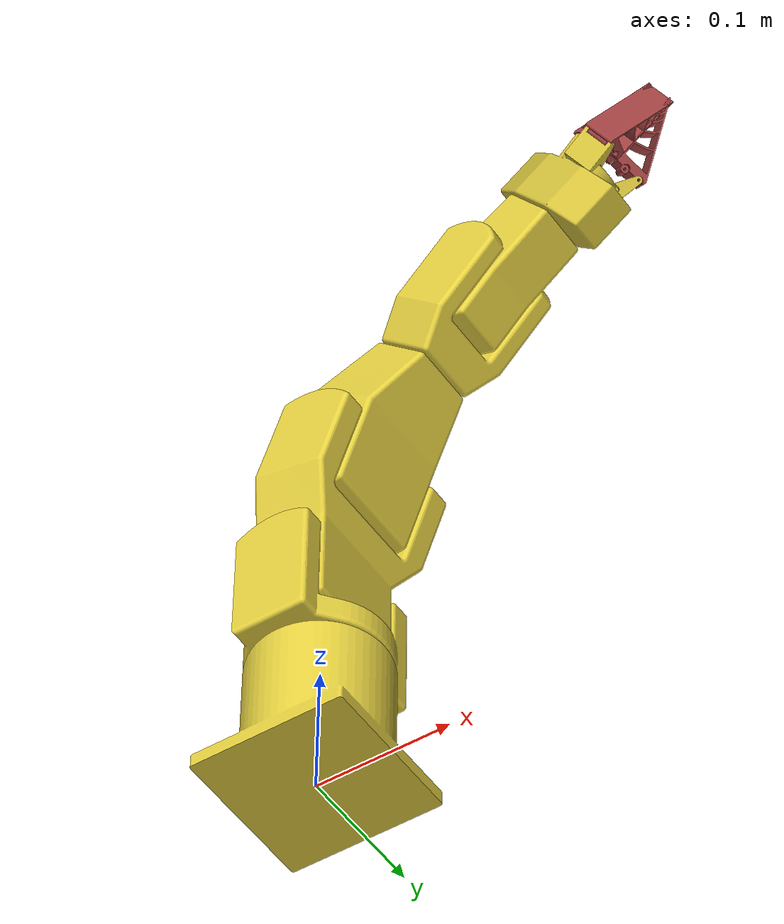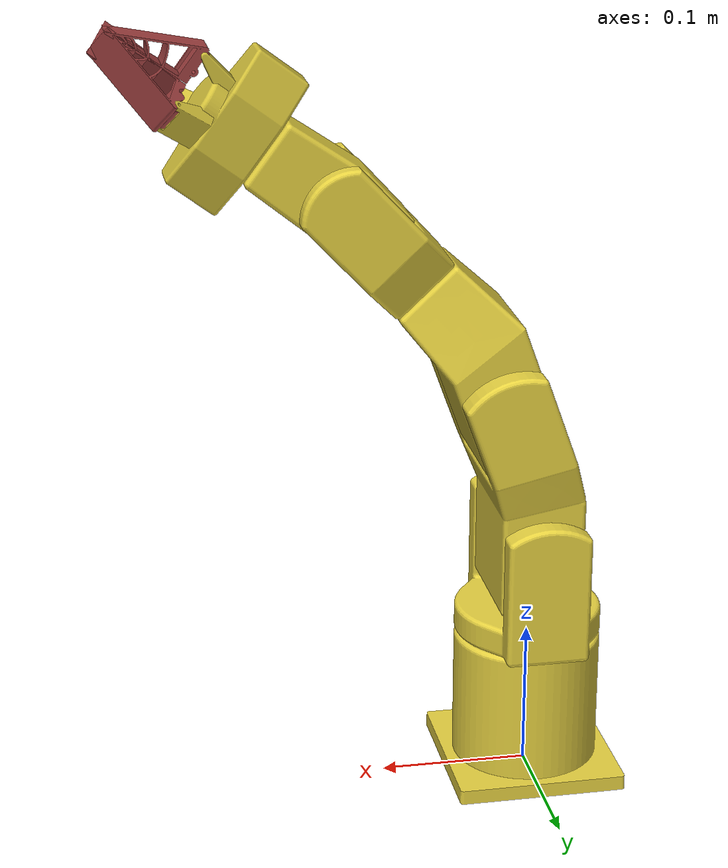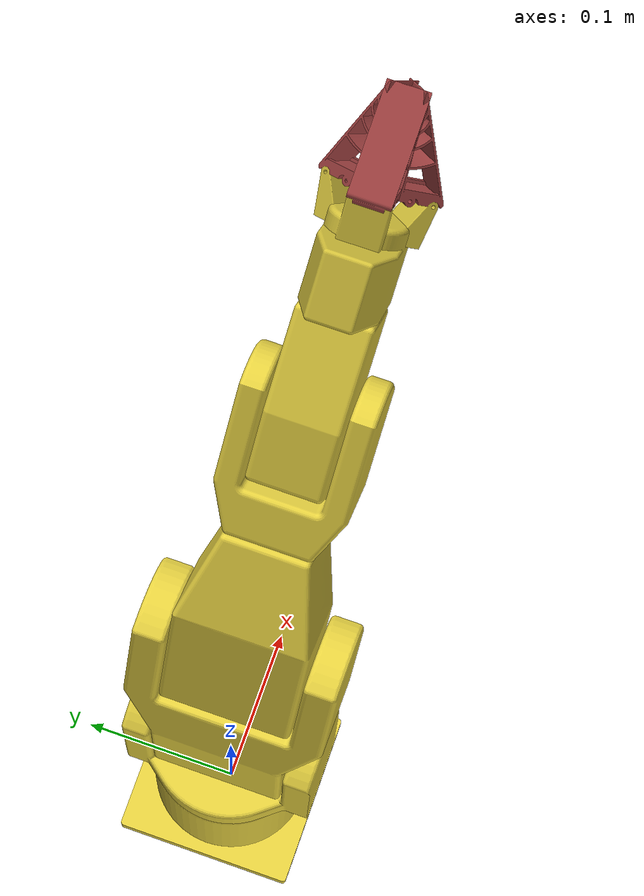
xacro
<?xml version="1.0" ?>
<robot xmlns:xacro="http://www.ros.org/wiki/xacro" name="minibot">

  <!--  minibot body -->
  <xacro:property name="body_color" value="${231/255} ${210/255} ${64/255} 1.0"/>
  <xacro:property name="palm_color" value="${214/255} ${195/255} ${59/255} 1.0"/>
  <xacro:property name="finger_color" value="0.62 0.25 0.25 1.0"/>

  <link name="base_link">
    <visual>
	  <origin rpy="0 0 0" xyz="0.0 0 0.0"/>
      <material name="body">
          <color rgba="${body_color}"/>
      </material>
      <geometry>
        <mesh filename="package://minibot_moveit_config/config/stl/base.stl" />
      </geometry>
    </visual>
    <collision>
        <geometry>
          <mesh filename="package://minibot_moveit_config/config/stl/base_collision.stl" />
        </geometry>
     </collision>
  </link>

  <joint name="base_joint" type="revolute">
     <origin rpy="0.0 0 0.0" xyz="0 0 0.1005"/>
     <parent link="base_link"/>
     <child link="shoulder_link"/>
     <axis xyz="0 0 1" />
     <limit effort="10.0" lower="${-135/180*pi}" upper="${135/180*pi}" velocity="${90/180*pi}" />

     <safety_controller k_position="100.0" k_velocity="40.0" soft_lower_limit="${-130/180*pi}" soft_upper_limit="${130/180*pi}" />
  </joint>

  <link name="shoulder_link">
      <visual>
      	  <origin rpy="0.0 ${-pi/2} ${-pi/2}" xyz="0 0 0"/>
          <material name="body">
             <color rgba="${body_color}"/>
          </material>
          <geometry>
             <mesh filename="package://minibot_moveit_config/config/stl/shoulder.stl" />
          </geometry>
      </visual>
      <collision>
         <geometry>
            <mesh filename="package://minibot_moveit_config/config/stl/shoulder_collision.stl" />
         </geometry>
     </collision>
  </link>

  <joint name="shoulder_joint" type="revolute">
     <origin rpy="0.0 0 0" xyz="0 0 0.0745"/>
     <parent link="shoulder_link"/>
     <child link="upperarm_link"/>
     <axis xyz="0 1 0" />
     <limit effort="20" lower="${-90/180*pi}" upper="${105/180*pi}" velocity="${120/180*pi}" />

     <safety_controller k_position="100.0" k_velocity="40.0" soft_lower_limit="${-85/80*pi}" soft_upper_limit="${100/180*pi}" />
  </joint>

  <link name="upperarm_link">
      <visual>
       	  <origin  xyz="0 0 0" rpy="0.0 ${-pi/2} ${pi/2}"/>
          <material name="body">
             <color rgba="${body_color}"/>
          </material>

          <geometry>
             <mesh filename="package://minibot_moveit_config/config/stl/upperarm.stl" />
          </geometry>
      </visual>
      <collision>
        <geometry>
          <mesh filename="package://minibot_moveit_config/config/stl/upperarm_collision.stl" />
        </geometry>
      </collision>
  </link>

  <!-- measured in CAD/upperarm.ipt -->
  <joint name="upperarm_joint" type="revolute">
     <origin rpy="0.0 ${20.0/180*pi} 0" xyz="0.027362 0 0.105175"/>
     <parent link="upperarm_link"/>
     <child link="elbow_link"/>
     <axis xyz="0 1 0" />
     <limit effort="20" lower="${-115/180*pi}" upper="${115/180*pi}" velocity="${90/180*pi}" />
     <safety_controller k_position="100.0" k_velocity="40.0" soft_lower_limit="${-110/180*pi}" soft_upper_limit="${110/180*pi}" />
  </joint>

  <link name="elbow_link">
       <visual>
       	  <origin  xyz="0 0 0" rpy="${-pi/2} ${-pi/2} 0.0"/>
          <material name="body">
             <color rgba="${body_color}"/>
          </material>

          <geometry>
             <mesh filename="package://minibot_moveit_config/config/stl/elbow.stl" />
          </geometry>
       </visual>
      <collision>
         <geometry>
           <mesh filename="package://minibot_moveit_config/config/stl/elbow_collision.stl" />
        </geometry>
     </collision>
  </link>

  <!-- measured in CAD/elbow.ipt -->
  <joint name="elbow_joint" type="revolute">
     <origin rpy="0.0 ${23.0/180*pi} 0" xyz="0.052749 0 0.159268"/>
     <parent link="elbow_link"/>
     <child link="forearm_link"/>
     <axis xyz="0 0 1" />
     <limit effort="15" lower="${-179/180*pi }" upper="${179/180*pi}" velocity="${120/180*pi}" />
     <safety_controller k_position="100.0" k_velocity="40.0" soft_lower_limit="${-170/180*pi}" soft_upper_limit="${170/180*pi}" />
  </joint>

  <link name="forearm_link">
       <visual>
       	  <origin  xyz="0 0 0" rpy="${-pi/2} ${-pi/2} 0"/>
          <material name="body">
             <color rgba="${body_color}"/>
          </material>

          <geometry>
             <mesh filename="package://minibot_moveit_config/config/stl/forearm.stl"/>
          </geometry>
       </visual>
       <collision>
          <geometry>
             <mesh filename="package://minibot_moveit_config/config/stl/forearm_collision.stl" />
          </geometry>
       </collision>
  </link>

   <joint name="forearm_joint" type="revolute">
     <origin rpy="0.0 0.0 0" xyz="0.0 0 0.0"/>
     <parent link="forearm_link"/>
     <child link="wrist_link"/>
     <axis xyz="0 1 0" />
     <limit effort="5" lower="${-130/180*pi}" upper="${112/180*pi}" velocity="${90/180*pi}" />
     <safety_controller k_position="100.0" k_velocity="40.0" soft_lower_limit="${-125/180*pi}" soft_upper_limit="${107/180*pi}" />
  </joint>

  <link name="wrist_link">
       <visual>
       	  <origin  xyz="0 0 ${0}" rpy="0 ${pi} ${pi/2}"/>
          <material name="body">
             <color rgba="${body_color}"/>
          </material>

          <geometry>
             <mesh filename="package://minibot_moveit_config/config/stl/wrist.stl" />
          </geometry>
       </visual>
  </link>

  <joint name="wrist_joint" type="revolute">
     <origin rpy="0.0 ${10.0/180*pi} 0" xyz="0.01046 0 ${0.05842}"/>
     <parent link="wrist_link"/>
     <child link="flange_link"/>
     <axis xyz="0 0 1" />
     <limit effort="5" lower="${-179/180*pi}" upper="${179/180*pi}" velocity="${180/180*pi}" />
     <safety_controller k_position="100.0" k_velocity="40.0" soft_lower_limit="${-170/180*pi}" soft_upper_limit="${170/180*pi}" />
  </joint>

  <!--  flange -->

  <link name="flange_link">
  </link>

  <joint name="flange_joint" type="fixed">
     <origin rpy="0 0 0"  xyz="0 0 0"/>
     <parent link="flange_link"/>
     <child link="palm_link"/>
  </joint>

  <!--  tool centre point tool0 -->

  <joint name="tool0_joint" type="fixed">
     <origin rpy="0 0 0"  xyz="0 0 0.075"/>
     <parent link="flange_link"/>
     <child link="tool0_link"/>
  </joint>

  <link name="tool0_link">
  </link>

  <!--  minibot palm -->

  <link name="palm_link">
       <visual>${179/180*pi}
          <origin  xyz="0 0 ${0.042}" rpy="0 0 ${pi/2}"/>
          <material name="palm">
            <color rgba="${palm_color}"/>
         </material>
          <geometry>
             <mesh filename="package://minibot_moveit_config/config/stl/palm.stl" />
          </geometry>
       </visual>
       <collision>
          <geometry>
             <mesh filename="package://minibot_moveit_config/config/stl/palm_collision.stl" />
          </geometry>
     </collision>
  </link>

  <joint name="knuckle_joint" type="revolute">
     <origin rpy="0 0 0" xyz="0 0 ${0}"/>
     <parent link="flange_link"/>
     <child link="knuckle_link"/>
     <axis xyz="0 0 1" />
     <limit effort="5.0" lower="0" upper="${60/180*pi}" velocity="${180/180*pi}" />
  </joint>

  <link name="knuckle_link">
  </link>

  <!-- distance of knuckle turning centre to the centre of the palm -->
  <!-- x,y is measured from CAD Model "Centre.ipt"; z is measured from "Gripper.iam" -->
  <xacro:property name="knuckle_centre_x" value="0.010392"/>
  <xacro:property name="knuckle_centre_y" value="0.006"/>
  <xacro:property name="knuckle_centre_z" value="0.0425"/>

  <joint name="palm_left_joint" type="continuous">
     <origin rpy="0 0 0" xyz="${knuckle_centre_x} -${knuckle_centre_y} ${0}"/>
     <parent link="flange_link"/>
     <child link="knuckle_left_link"/>
     <axis xyz="0 0 1" />
     <mimic joint="knuckle_joint" multiplier="1"/>
  </joint>

  <link name="knuckle_left_link">
       <visual>
          <origin  xyz="-${knuckle_centre_x} ${knuckle_centre_y} ${knuckle_centre_z}" rpy="0 ${pi} ${pi/2}"/>
          <material name="palm">
            <color rgba="${palm_color}"/>
          </material>

          <geometry>
             <mesh filename="package://minibot_moveit_config/config/stl/knuckle_left.stl"/>
          </geometry>
       </visual>
  </link>

  <joint name="palm_right_joint" type="continuous">
     <origin rpy="0 0 0" xyz="${knuckle_centre_x} ${knuckle_centre_y} ${0}"/>
     <parent link="flange_link"/>
     <child link="knuckle_right_link"/>
     <axis xyz="0 0 1" />
     <mimic joint="knuckle_joint" multiplier="-1"/>
  </joint>

  <link name="knuckle_right_link">
       <visual>
          <origin  xyz="-${knuckle_centre_x} -${knuckle_centre_y} ${knuckle_centre_z}" rpy="0 ${pi} ${pi/2}"/>
          <material name="palm">
            <color rgba="${palm_color}"/>
          </material>
          <geometry>
             <mesh filename="package://minibot_moveit_config/config/stl/knuckle_right.stl" />
          </geometry>
       </visual>
       <!-- no collision objects, knuckles are excluded from collision checking -->
  </link>

  <!--  minibot hand -->

  <!-- heigth of centre finger relativey to palm centre -->
  <!-- measured from CAD Model "Gripper.iam" -->

  <xacro:property name="finger_distance_z" value="0.0625"/>

  <!-- distance of knuckle turning centre to the centre of the finger -->
  <!-- defined in CAD Model "Centre.ipt" -->
  <xacro:property name="knuckle2finger_x" value="0.003108"/>
  <xacro:property name="knuckle2finger_y" value="0.017383"/>

  <joint name="finger_joint" type="revolute">
     <origin rpy="0 0 0" xyz="0 0 ${0}"/>
     <parent link="flange_link"/>
     <child link="finger_link"/>
     <axis xyz="0 1 0" />
     <limit effort="50.0" lower="${-10/180*pi}" upper="${60/180*pi}" velocity="${1800/180*pi}" />
  </joint>

  <link name="finger_link">
  </link>

  <joint name="finger_centre_joint" type="continuous">
     <origin rpy="0 0 0" xyz="-0.027392 0 ${finger_distance_z}"/>
     <parent link="flange_link"/>
     <child link="finger_centre_link"/>
     <axis xyz="0 1 0" />
     <mimic joint="finger_joint" multiplier="-1"/>
  </joint>

 <link name="finger_centre_link">
       <visual>
          <origin  xyz="0 0 0" rpy="${pi/2} 0 ${pi}"/>
          <material name="finger">
            <color rgba="${finger_color}"/>
          </material>
          <geometry>
             <mesh filename="package://minibot_moveit_config/config/stl/finger.stl"/>
          </geometry>
       </visual>
       <collision>
          <geometry>
             <mesh filename="package://minibot_moveit_config/config/stl/finger_collision.stl" />
          </geometry>
      </collision>
  </link>

  <joint name="finger_left_joint" type="continuous">
     <origin rpy="0 0 ${-60/180*pi}" xyz="${knuckle2finger_x} -${knuckle2finger_y} ${finger_distance_z}"/>
     <parent link="knuckle_left_link"/>
     <child link="finger_left_link"/>
     <axis xyz="0 1 0" />
     <mimic joint="finger_joint" multiplier="1"/>
  </joint>

  <link name="finger_left_link">
       <visual>
          <origin  xyz="0.0 0 0" rpy="${pi/2} 0 0"/>
          <material name="finger">
            <color rgba="${finger_color}"/>
          </material>
          <geometry>
             <mesh filename="package://minibot_moveit_config/config/stl/finger.stl"/>
          </geometry>
       </visual>
       <collision>
          <geometry>
             <mesh filename="package://minibot_moveit_config/config/stl/finger_collision.stl" />
          </geometry>
      </collision>

  </link>

 <joint name="finger_right_joint" type="continuous">
     <origin rpy="0 0 ${60/180*pi}" xyz="${knuckle2finger_x} ${knuckle2finger_y} ${finger_distance_z}"/>
     <parent link="knuckle_right_link"/>
     <child link="finger_right_link"/>
     <axis xyz="0 1 0" />
     <mimic joint="finger_joint" multiplier="1"/>
  </joint>

  <link name="finger_right_link">
       <visual>
          <origin  xyz="0.0 0 0" rpy="${pi/2} 0 0"/>
          <material name="finger">
            <color rgba="${finger_color}"/>
          </material>

          <geometry>
             <mesh filename="package://minibot_moveit_config/config/stl/finger.stl" />
          </geometry>
       </visual>
       <collision>
          <geometry>
             <mesh filename="package://minibot_moveit_config/config/stl/finger_collision.stl" />
          </geometry>
      </collision>

  </link>
</robot>
